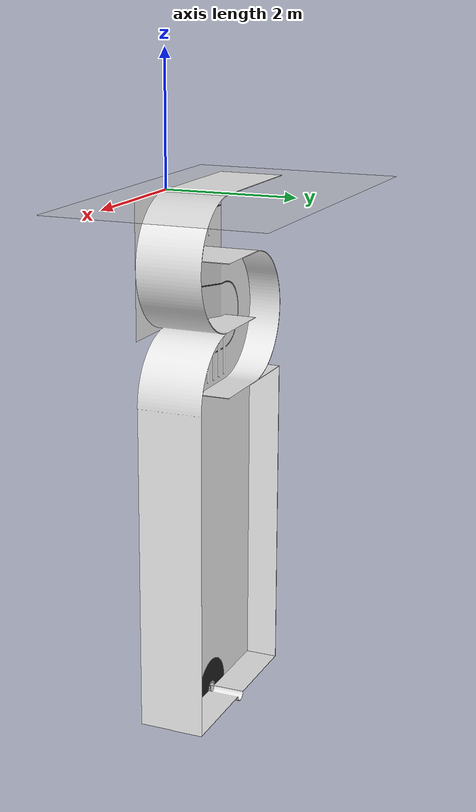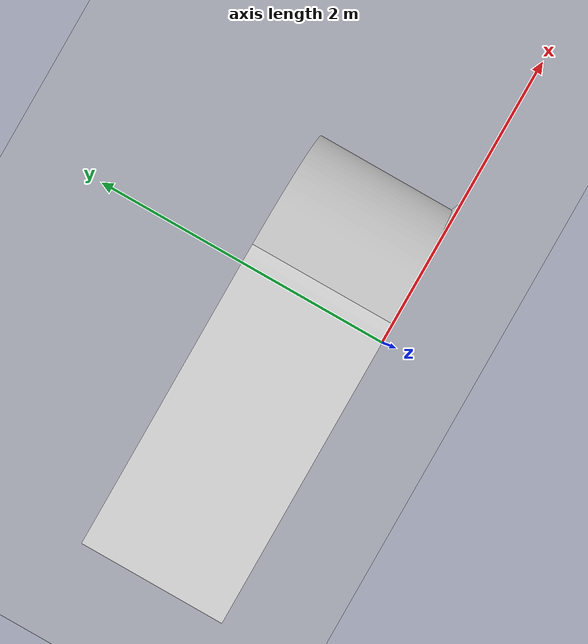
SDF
<sdf version="1.6">
 <world name="default">
  <model name="ground_plane">
   <static>1</static>
   <link name="link">
    <collision name="collision">
     <geometry><plane><normal>0 0 1</normal><size>100 100</size></plane></geometry>
     <surface><friction><ode><mu>100</mu><mu2>50</mu2></ode></friction></surface>
    </collision>
    <visual name="visual">
     <cast_shadows>0</cast_shadows>
     <geometry><plane><normal>0 0 1</normal><size>100 100</size></plane></geometry>
     <material>
      <script><uri>file://media/materials/scripts/gazebo.material</uri><name>Gazebo/Grey</name></script>
     </material>
    </visual>
   </link>
  </model>
  <light name="sun" type="directional">
   <pose>0 0 10 0 -0 0</pose>
   <diffuse>0.8 0.8 0.8 1</diffuse>
   <specular>0.1 0.1 0.1 1</specular>
   <attenuation>
    <range>1000</range>
    <constant>0.9</constant>
    <linear>0.01</linear>
    <quadratic>0.001</quadratic>
   </attenuation>
   <direction>-0.5 0.5 -1</direction>
  </light>
  <model name="field">
   <static>1</static>
   <link name="field">
    <collision name="field_collision">
     <geometry>
      <mesh><uri>/home/jjw/Desktop/capstone_2020/Final/map_final.stl</uri><scale>0.1 0.1 0.1</scale></mesh>
     </geometry>
     <max_contacts>100</max_contacts>
    </collision>
    <visual name="field_visual">
     <geometry>
      <mesh><uri>/home/jjw/Desktop/capstone_2020/Final/map_final.stl</uri><scale>0.1 0.1 0.1</scale></mesh>
     </geometry>
     <material>
      <script><uri>file://media/materials/scripts/gazebo.material</uri><name>Gazebo/White</name></script>
     </material>
    </visual>
   </link>
  </model>
  <model name="line">
   <static>1</static>
   <link name="line">
    <visual name="field_visual">
     <geometry>
      <mesh><uri>/home/jjw/Desktop/capstone_2020/Final/map_final_onlyline.stl</uri><scale>0.1 0.1 0.1</scale></mesh>
     </geometry>
     <material>
      <script><uri>file://media/materials/scripts/gazebo.material</uri><name>Gazebo/Black</name></script>
     </material>
    </visual>
   </link>
  </model>
  <model name="line2">
   <static>1</static>
   <link name="line">
    <visual name="field_visual">
     <geometry>
      <mesh><uri>/home/jjw/Desktop/capstone_2020/Final/map_final_goalline.stl</uri><scale>0.1 0.1 0.1</scale></mesh>
     </geometry>
     <material>
      <script><uri>file://media/materials/scripts/gazebo.material</uri><name>Gazebo/Black</name></script>
     </material>
    </visual>
   </link>
  </model>
  <gravity>0 0 -9.8</gravity>
  <magnetic_field>6e-06 2.3e-05 -4.2e-05</magnetic_field>
  <atmosphere type="adiabatic"/>
  <physics name="default_physics" default="0" type="ode">
   <max_step_size>0.001</max_step_size>
   <real_time_factor>1</real_time_factor>
   <real_time_update_rate>1000</real_time_update_rate>
  </physics>
  <scene><ambient>0.4 0.4 0.4 1</ambient><background>0.7 0.7 0.7 1</background><shadows>1</shadows></scene>
  <spherical_coordinates>
   <surface_model>EARTH_WGS84</surface_model>
   <latitude_deg>0</latitude_deg>
   <longitude_deg>0</longitude_deg>
   <elevation>0</elevation>
   <heading_deg>0</heading_deg>
  </spherical_coordinates>
 </world>
</sdf>
